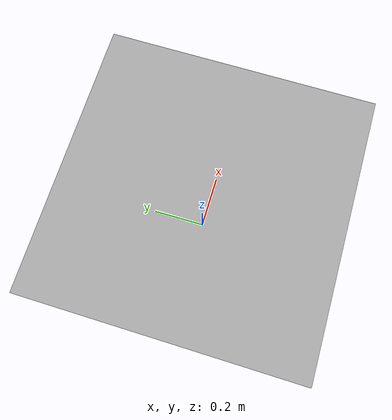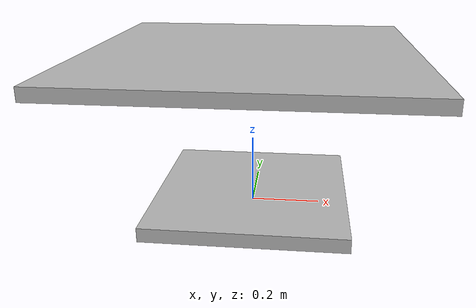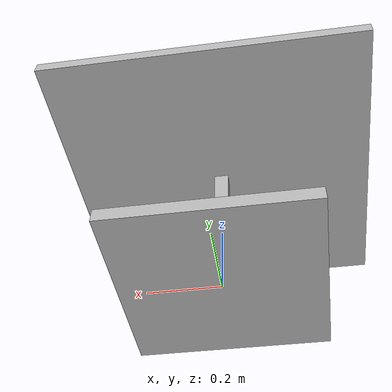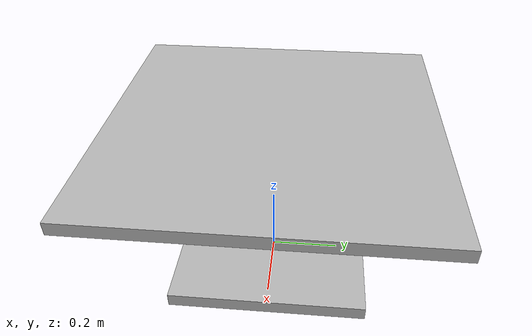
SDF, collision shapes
<?xml version="1.0" ?>
<sdf version="1.5">
  <model name="cafe_table">
    <static>true</static>
    <link name="link">
      <collision name="surface">
        <pose>0 0 0.45 0 0 0</pose>
        <geometry>
          <box>
            <size>0.913 0.913 0.035</size>
          </box>
        </geometry>
      </collision>

      <collision name="column">
        <pose>0 0 0.37 0 0 0</pose>
        <geometry>
          <box>
            <size>0.042 0.042 0.15</size>
          </box>
        </geometry>
      </collision>

      <collision name="base">
        <pose>0 0 0.02 0 0 0</pose>
        <geometry>
          <box>
            <size>0.56 0.56 0.04</size>
          </box>
        </geometry>
      </collision>

      <visual name="visual">
        <geometry>
          <mesh>
            <scale>1 1 0.6</scale>
            <uri>file://isr-testbed/cafe_table/meshes/cafe_table.dae</uri>
          </mesh>
        </geometry>
      </visual>
    </link>
  </model>
</sdf>
